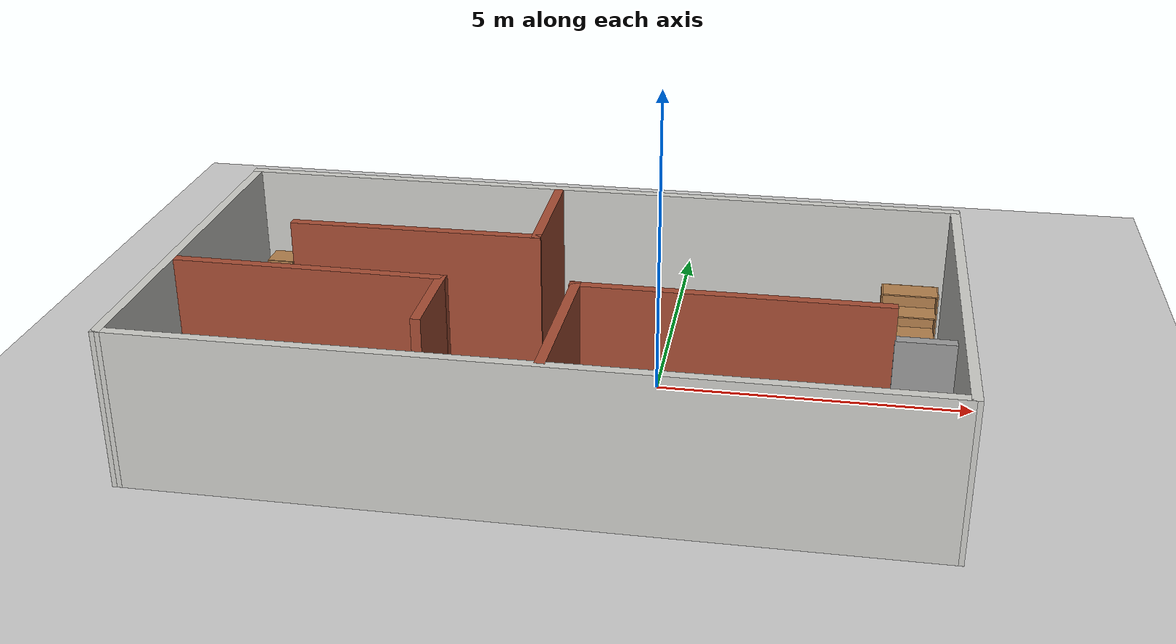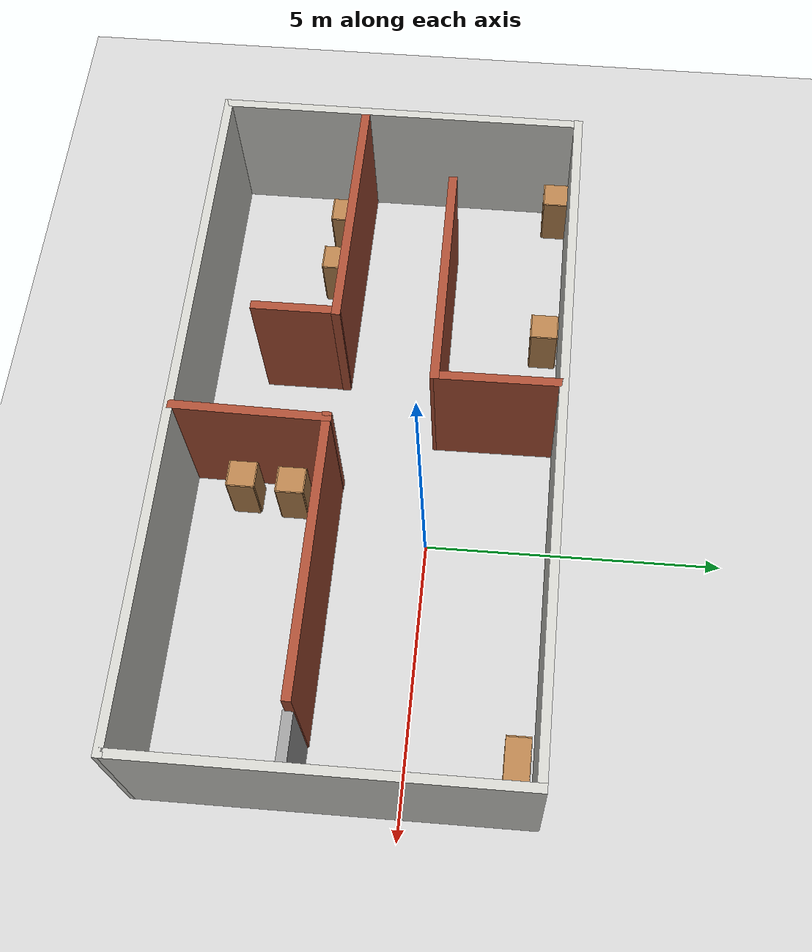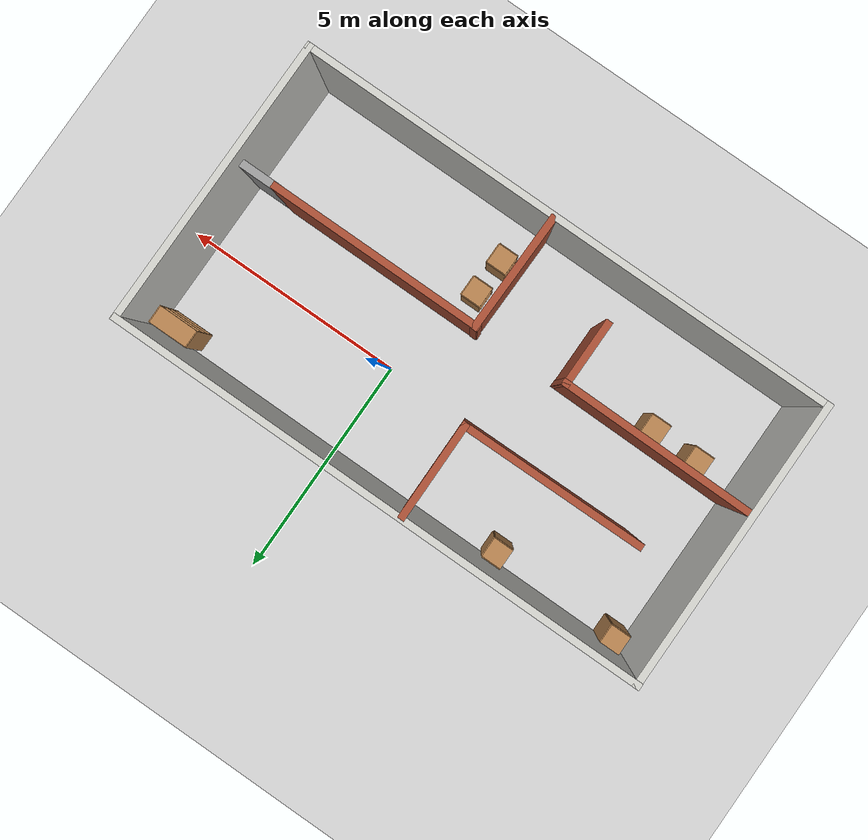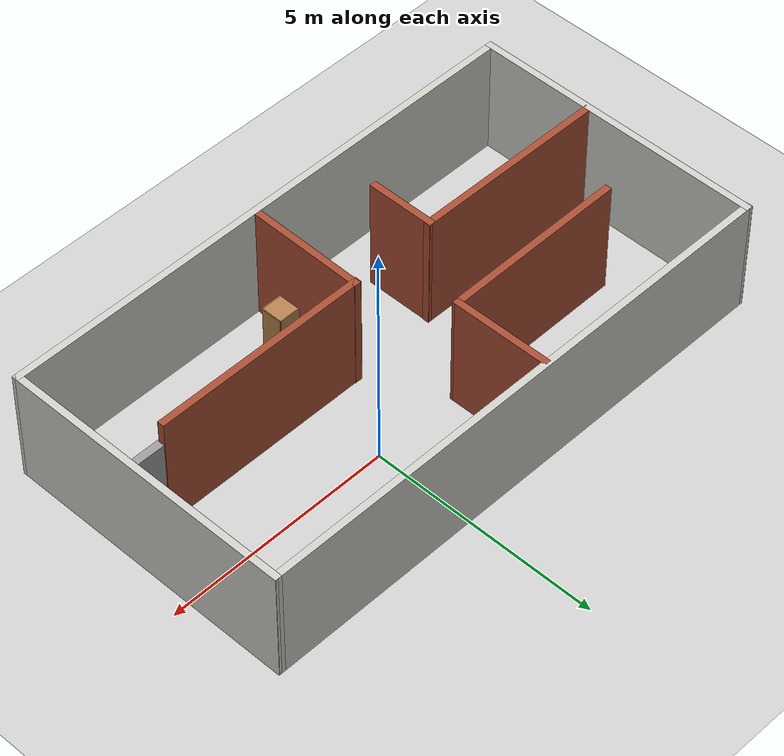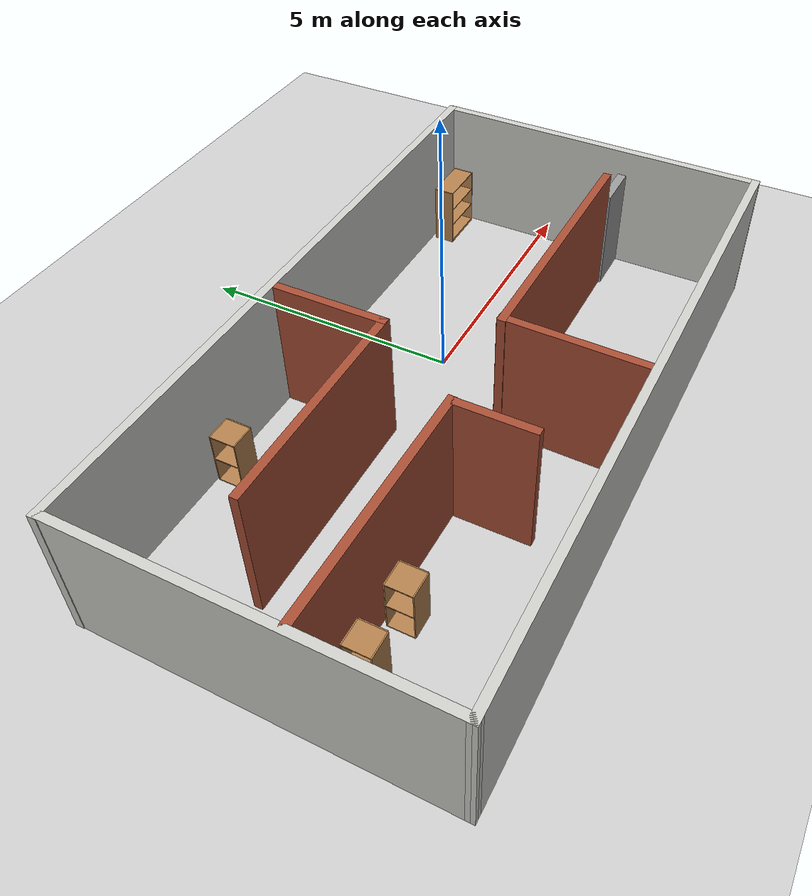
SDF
<sdf version="1.7">
 <world name="default">
  <light name="sun" type="directional">
   <pose>0 0 10 0 -0 0</pose>
   <diffuse>0.8 0.8 0.8 1</diffuse>
   <specular>0.2 0.2 0.2 1</specular>
   <attenuation>
    <range>1000</range>
    <constant>0.9</constant>
    <linear>0.01</linear>
    <quadratic>0.001</quadratic>
   </attenuation>
   <direction>-0.5 0.1 -0.9</direction>
   <spot><inner_angle>0</inner_angle><outer_angle>0</outer_angle><falloff>0</falloff></spot>
  </light>
  <model name="ground_plane">
   <static>1</static>
   <link name="link">
    <collision name="collision">
     <geometry><plane><normal>0 0 1</normal><size>100 100</size></plane></geometry>
     <surface><friction><ode><mu>100</mu><mu2>50</mu2></ode></friction></surface>
    </collision>
    <visual name="visual">
     <cast_shadows>0</cast_shadows>
     <geometry><plane><normal>0 0 1</normal><size>100 100</size></plane></geometry>
     <material>
      <script><uri>file://media/materials/scripts/gazebo.material</uri><name>Gazebo/Grey</name></script>
     </material>
    </visual>
   </link>
  </model>
  <gravity>0 0 -9.8</gravity>
  <magnetic_field>6e-06 2.3e-05 -4.2e-05</magnetic_field>
  <atmosphere type="adiabatic"/>
  <physics type="ode">
   <max_step_size>0.001</max_step_size>
   <real_time_factor>1</real_time_factor>
   <real_time_update_rate>1000</real_time_update_rate>
  </physics>
  <scene><ambient>0.4 0.4 0.4 1</ambient><background>0.7 0.7 0.7 1</background><shadows>1</shadows></scene>
  <audio><device>default</device></audio>
  <spherical_coordinates>
   <surface_model>EARTH_WGS84</surface_model>
   <latitude_deg>0</latitude_deg>
   <longitude_deg>0</longitude_deg>
   <elevation>0</elevation>
   <heading_deg>0</heading_deg>
  </spherical_coordinates>
  <model name="room1">
   <pose>-1.36 -0.847041 0 0 -0 0</pose>
   <link name="Door_0">
    <collision name="Door_0_Collision">
     <geometry><box><size>0.9 0.17 2</size></box></geometry>
     <pose>0 0 1 0 -0 0</pose>
    </collision>
    <visual name="Door_0_Visual">
     <pose>0 0 1 0 -0 0</pose>
     <geometry><box><size>0.9 0.17 2</size></box></geometry>
     <material>
      <script><uri>file://media/materials/scripts/gazebo.material</uri><name>Gazebo/Grey</name></script>
     </material>
    </visual>
    <pose>5.41 -0.79744 0 0 -0 0</pose>
   </link>
   <link name="Wall_0">
    <collision name="Wall_0_Collision">
     <geometry><box><size>6.42001 0.15 2.5</size></box></geometry>
     <pose>0 0 1.25 0 -0 0</pose>
    </collision>
    <visual name="Wall_0_Visual">
     <pose>0 0 1.25 0 -0 0</pose>
     <geometry><box><size>6.42001 0.15 2.5</size></box></geometry>
     <material>
      <script><uri>file://media/materials/scripts/gazebo.material</uri><name>Gazebo/CeilingTiled</name></script>
      <ambient>1 1 1 1</ambient>
     </material>
     <meta><layer>0</layer></meta>
    </visual>
    <pose>-5.925 -0.17244 0 0 -0 -1.57239</pose>
   </link>
   <link name="Wall_1">
    <collision name="Wall_1_Collision">
     <geometry><box><size>12 0.15 2.5</size></box></geometry>
     <pose>0 0 1.25 0 -0 0</pose>
    </collision>
    <visual name="Wall_1_Visual">
     <pose>0 0 1.25 0 -0 0</pose>
     <geometry><box><size>12 0.15 2.5</size></box></geometry>
     <material>
      <script><uri>file://media/materials/scripts/gazebo.material</uri><name>Gazebo/CeilingTiled</name></script>
      <ambient>1 1 1 1</ambient>
     </material>
     <meta><layer>0</layer></meta>
    </visual>
    <pose>-0.005 -3.30744 0 0 -0 0</pose>
   </link>
   <link name="Wall_11">
    <collision name="Wall_11_Collision">
     <geometry><box><size>2.64032 0.15 2.5</size></box></geometry>
     <pose>0 0 1.25 0 -0 0</pose>
    </collision>
    <visual name="Wall_11_Visual">
     <pose>0 0 1.25 0 -0 0</pose>
     <geometry><box><size>2.64032 0.15 2.5</size></box></geometry>
     <material>
      <script><uri>file://media/materials/scripts/gazebo.material</uri><name>Gazebo/Bricks</name></script>
      <ambient>1 1 1 1</ambient>
     </material>
     <meta><layer>0</layer></meta>
    </visual>
    <pose>0.3 -2.00244 0 0 -0 -1.58686</pose>
   </link>
   <link name="Wall_13">
    <collision name="Wall_13_Collision">
     <geometry><box><size>4.75 0.15 2.5</size></box></geometry>
     <pose>0 0 1.25 0 -0 0</pose>
    </collision>
    <visual name="Wall_13_Visual">
     <pose>0 0 1.25 0 -0 0</pose>
     <geometry><box><size>4.75 0.15 2.5</size></box></geometry>
     <material>
      <script><uri>file://media/materials/scripts/gazebo.material</uri><name>Gazebo/Bricks</name></script>
      <ambient>1 1 1 1</ambient>
     </material>
     <meta><layer>0</layer></meta>
    </visual>
    <pose>2.6 -0.76744 0 0 -0 0</pose>
   </link>
   <link name="Wall_2">
    <collision name="Wall_2_Collision">
     <geometry><box><size>6.42001 0.15 2.5</size></box></geometry>
     <pose>0 0 1.25 0 -0 0</pose>
    </collision>
    <visual name="Wall_2_Visual">
     <pose>0 0 1.25 0 -0 0</pose>
     <geometry><box><size>6.42001 0.15 2.5</size></box></geometry>
     <material>
      <script><uri>file://media/materials/scripts/gazebo.material</uri><name>Gazebo/CeilingTiled</name></script>
      <ambient>1 1 1 1</ambient>
     </material>
     <meta><layer>0</layer></meta>
    </visual>
    <pose>5.925 -0.17244 0 0 -0 1.5692</pose>
   </link>
   <link name="Wall_3">
    <collision name="Wall_3_Collision">
     <geometry><box><size>12 0.15 2.5</size></box></geometry>
     <pose>0 0 1.25 0 -0 0</pose>
    </collision>
    <visual name="Wall_3_Visual">
     <pose>0 0 1.25 0 -0 0</pose>
     <geometry><box><size>12 0.15 2.5</size></box></geometry>
     <material>
      <script><uri>file://media/materials/scripts/gazebo.material</uri><name>Gazebo/CeilingTiled</name></script>
      <ambient>1 1 1 1</ambient>
     </material>
     <meta><layer>0</layer></meta>
    </visual>
    <pose>-0.005 2.96256 0 0 -0 3.14159</pose>
   </link>
   <link name="Wall_5">
    <collision name="Wall_5_Collision">
     <geometry><box><size>2.17002 0.15 2.5</size></box></geometry>
     <pose>0 0 1.25 0 -0 0</pose>
    </collision>
    <visual name="Wall_5_Visual">
     <pose>0 0 1.25 0 -0 0</pose>
     <geometry><box><size>2.17002 0.15 2.5</size></box></geometry>
     <material>
      <script><uri>file://media/materials/scripts/gazebo.material</uri><name>Gazebo/Bricks</name></script>
      <ambient>1 1 1 1</ambient>
     </material>
     <meta><layer>0</layer></meta>
    </visual>
    <pose>-0.595 1.89256 0 0 -0 -1.56585</pose>
   </link>
   <link name="Wall_6">
    <collision name="Wall_6_Collision">
     <geometry><box><size>4.07012 0.15 2.5</size></box></geometry>
     <pose>0 0 1.25 0 -0 0</pose>
    </collision>
    <visual name="Wall_6_Visual">
     <pose>0 0 1.25 0 -0 0</pose>
     <geometry><box><size>4.07012 0.15 2.5</size></box></geometry>
     <material>
      <script><uri>file://media/materials/scripts/gazebo.material</uri><name>Gazebo/Bricks</name></script>
      <ambient>1 1 1 1</ambient>
     </material>
     <meta><layer>0</layer></meta>
    </visual>
    <pose>-2.55 0.85756 0 0 -0 -3.13394</pose>
   </link>
   <link name="Wall_8">
    <collision name="Wall_8_Collision">
     <geometry><box><size>4.32011 0.15 2.5</size></box></geometry>
     <pose>0 0 1.25 0 -0 0</pose>
    </collision>
    <visual name="Wall_8_Visual">
     <pose>0 0 1.25 0 -0 0</pose>
     <geometry><box><size>4.32011 0.15 2.5</size></box></geometry>
     <material>
      <script><uri>file://media/materials/scripts/gazebo.material</uri><name>Gazebo/Bricks</name></script>
      <ambient>1 1 1 1</ambient>
     </material>
     <meta><layer>0</layer></meta>
    </visual>
    <pose>-3.765 -0.84244 0 0 -0 -0.007194</pose>
   </link>
   <link name="Wall_9">
    <collision name="Wall_9_Collision">
     <geometry><box><size>1.5 0.15 2.5</size></box></geometry>
     <pose>0 0 1.25 0 -0 0</pose>
    </collision>
    <visual name="Wall_9_Visual">
     <pose>0 0 1.25 0 -0 0</pose>
     <geometry><box><size>1.5 0.15 2.5</size></box></geometry>
     <material>
      <script><uri>file://media/materials/scripts/gazebo.material</uri><name>Gazebo/Bricks</name></script>
      <ambient>1 1 1 1</ambient>
     </material>
     <meta><layer>0</layer></meta>
    </visual>
    <pose>-1.69 -1.53244 0 0 -0 -1.5708</pose>
   </link>
   <static>1</static>
  </model>
  <model name="bookshelf">
   <static>1</static>
   <link name="link">
    <inertial><mass>1</mass></inertial>
    <collision name="back">
     <pose>0 0.005 0.6 0 -0 0</pose>
     <geometry><box><size>0.9 0.01 1.2</size></box></geometry>
    </collision>
    <visual name="visual1">
     <pose>0 0.005 0.6 0 -0 0</pose>
     <geometry><box><size>0.9 0.01 1.2</size></box></geometry>
     <material>
      <script><uri>file://media/materials/scripts/gazebo.material</uri><name>Gazebo/Wood</name></script>
     </material>
    </visual>
    <collision name="left_side">
     <pose>0.45 -0.195 0.6 0 -0 0</pose>
     <geometry><box><size>0.02 0.4 1.2</size></box></geometry>
    </collision>
    <visual name="visual2">
     <pose>0.45 -0.195 0.6 0 -0 0</pose>
     <geometry><box><size>0.02 0.4 1.2</size></box></geometry>
     <material>
      <script><uri>file://media/materials/scripts/gazebo.material</uri><name>Gazebo/Wood</name></script>
     </material>
    </visual>
    <collision name="right_side">
     <pose>-0.45 -0.195 0.6 0 -0 0</pose>
     <geometry><box><size>0.02 0.4 1.2</size></box></geometry>
    </collision>
    <visual name="visual3">
     <pose>-0.45 -0.195 0.6 0 -0 0</pose>
     <geometry><box><size>0.02 0.4 1.2</size></box></geometry>
     <material>
      <script><uri>file://media/materials/scripts/gazebo.material</uri><name>Gazebo/Wood</name></script>
     </material>
    </visual>
    <collision name="bottom">
     <pose>0 -0.195 0.03 0 -0 0</pose>
     <geometry><box><size>0.88 0.4 0.06</size></box></geometry>
    </collision>
    <visual name="visual4">
     <pose>0 -0.195 0.03 0 -0 0</pose>
     <geometry><box><size>0.88 0.4 0.06</size></box></geometry>
     <material>
      <script><uri>file://media/materials/scripts/gazebo.material</uri><name>Gazebo/Wood</name></script>
     </material>
    </visual>
    <collision name="top">
     <pose>0 -0.195 1.19 0 -0 0</pose>
     <geometry><box><size>0.88 0.4 0.02</size></box></geometry>
    </collision>
    <visual name="visual5">
     <pose>0 -0.195 1.19 0 -0 0</pose>
     <geometry><box><size>0.88 0.4 0.02</size></box></geometry>
     <material>
      <script><uri>file://media/materials/scripts/gazebo.material</uri><name>Gazebo/Wood</name></script>
     </material>
    </visual>
    <collision name="low_shelf">
     <pose>0 -0.195 0.43 0 -0 0</pose>
     <geometry><box><size>0.88 0.4 0.02</size></box></geometry>
    </collision>
    <visual name="visual6">
     <pose>0 -0.195 0.43 0 -0 0</pose>
     <geometry><box><size>0.88 0.4 0.02</size></box></geometry>
     <material>
      <script><uri>file://media/materials/scripts/gazebo.material</uri><name>Gazebo/Wood</name></script>
     </material>
    </visual>
    <collision name="high_shelf">
     <pose>0 -0.195 0.8 0 -0 0</pose>
     <geometry><box><size>0.88 0.4 0.02</size></box></geometry>
    </collision>
    <visual name="visual7">
     <pose>0 -0.195 0.8 0 -0 0</pose>
     <geometry><box><size>0.88 0.4 0.02</size></box></geometry>
     <material>
      <script><uri>file://media/materials/scripts/gazebo.material</uri><name>Gazebo/Wood</name></script>
     </material>
    </visual>
   </link>
   <pose>3.95286 1.96369 0 0 -0 0</pose>
  </model>
  <model name="cabinet">
   <static>1</static>
   <link name="cabinet_bottom_plate">
    <inertial>
     <pose>0 0 -1 0 -0 0</pose>
     <inertia><ixx>2.05</ixx><ixy>0</ixy><ixz>0</ixz><iyy>2.05</iyy><iyz>0</iyz><izz>2.05</izz></inertia>
     <mass>25</mass>
    </inertial>
    <collision name="cabinet_bottom_plate_geom">
     <pose>0 0 0.01 0 -0 0</pose>
     <geometry><box><size>0.45 0.45 0.02</size></box></geometry>
    </collision>
    <visual name="cabinet_bottom_plate_geom_visual">
     <pose>0 0 0.01 0 -0 0</pose>
     <geometry><box><size>0.45 0.45 0.02</size></box></geometry>
     <material>
      <script><uri>file://media/materials/scripts/gazebo.material</uri><name>Gazebo/Wood</name></script>
     </material>
    </visual>
    <collision name="cabinet_bottom_plate_geom_cabinet_back_plate">
     <pose>0.235 0 0.51 0 -0 0</pose>
     <geometry><box><size>0.02 0.45 1.02</size></box></geometry>
    </collision>
    <visual name="cabinet_bottom_plate_geom_cabinet_back_plate_visual">
     <pose>0.235 0 0.51 0 -0 0</pose>
     <geometry><box><size>0.02 0.45 1.02</size></box></geometry>
     <material>
      <script><uri>file://media/materials/scripts/gazebo.material</uri><name>Gazebo/Wood</name></script>
     </material>
    </visual>
    <collision name="cabinet_bottom_plate_geom_cabinet_left_plate">
     <pose>0 0.235 0.51 0 -0 0</pose>
     <geometry><box><size>0.45 0.02 1.02</size></box></geometry>
    </collision>
    <visual name="cabinet_bottom_plate_geom_cabinet_left_plate_visual">
     <pose>0 0.235 0.51 0 -0 0</pose>
     <geometry><box><size>0.45 0.02 1.02</size></box></geometry>
     <material>
      <script><uri>file://media/materials/scripts/gazebo.material</uri><name>Gazebo/Wood</name></script>
     </material>
    </visual>
    <collision name="cabinet_bottom_plate_geom_cabinet_middle_plate">
     <pose>0 0 0.51 0 -0 0</pose>
     <geometry><box><size>0.45 0.45 0.02</size></box></geometry>
    </collision>
    <visual name="cabinet_bottom_plate_geom_cabinet_middle_plate_visual">
     <pose>0 0 0.51 0 -0 0</pose>
     <geometry><box><size>0.45 0.45 0.02</size></box></geometry>
     <material>
      <script><uri>file://media/materials/scripts/gazebo.material</uri><name>Gazebo/Wood</name></script>
     </material>
    </visual>
    <collision name="cabinet_bottom_plate_geom_cabinet_right_plate">
     <pose>0 -0.235 0.51 0 -0 0</pose>
     <geometry><box><size>0.45 0.02 1.02</size></box></geometry>
    </collision>
    <visual name="cabinet_bottom_plate_geom_cabinet_right_plate_visual">
     <pose>0 -0.235 0.51 0 -0 0</pose>
     <geometry><box><size>0.45 0.02 1.02</size></box></geometry>
     <material>
      <script><uri>file://media/materials/scripts/gazebo.material</uri><name>Gazebo/Wood</name></script>
     </material>
    </visual>
    <collision name="cabinet_bottom_plate_geom_cabinet_top_plate">
     <pose>0 0 1.01 0 -0 0</pose>
     <geometry><box><size>0.45 0.45 0.02</size></box></geometry>
    </collision>
    <visual name="cabinet_bottom_plate_geom_cabinet_top_plate_visual">
     <pose>0 0 1.01 0 -0 0</pose>
     <geometry><box><size>0.45 0.45 0.02</size></box></geometry>
     <material>
      <script><uri>file://media/materials/scripts/gazebo.material</uri><name>Gazebo/Wood</name></script>
     </material>
    </visual>
   </link>
   <pose>-6.85176 1.84334 0 0 -0 0</pose>
  </model>
  <model name="cabinet_0">
   <static>1</static>
   <link name="cabinet_bottom_plate">
    <inertial>
     <pose>0 0 -1 0 -0 0</pose>
     <inertia><ixx>2.05</ixx><ixy>0</ixy><ixz>0</ixz><iyy>2.05</iyy><iyz>0</iyz><izz>2.05</izz></inertia>
     <mass>25</mass>
    </inertial>
    <collision name="cabinet_bottom_plate_geom">
     <pose>0 0 0.01 0 -0 0</pose>
     <geometry><box><size>0.45 0.45 0.02</size></box></geometry>
    </collision>
    <visual name="cabinet_bottom_plate_geom_visual">
     <pose>0 0 0.01 0 -0 0</pose>
     <geometry><box><size>0.45 0.45 0.02</size></box></geometry>
     <material>
      <script><uri>file://media/materials/scripts/gazebo.material</uri><name>Gazebo/Wood</name></script>
     </material>
    </visual>
    <collision name="cabinet_bottom_plate_geom_cabinet_back_plate">
     <pose>0.235 0 0.51 0 -0 0</pose>
     <geometry><box><size>0.02 0.45 1.02</size></box></geometry>
    </collision>
    <visual name="cabinet_bottom_plate_geom_cabinet_back_plate_visual">
     <pose>0.235 0 0.51 0 -0 0</pose>
     <geometry><box><size>0.02 0.45 1.02</size></box></geometry>
     <material>
      <script><uri>file://media/materials/scripts/gazebo.material</uri><name>Gazebo/Wood</name></script>
     </material>
    </visual>
    <collision name="cabinet_bottom_plate_geom_cabinet_left_plate">
     <pose>0 0.235 0.51 0 -0 0</pose>
     <geometry><box><size>0.45 0.02 1.02</size></box></geometry>
    </collision>
    <visual name="cabinet_bottom_plate_geom_cabinet_left_plate_visual">
     <pose>0 0.235 0.51 0 -0 0</pose>
     <geometry><box><size>0.45 0.02 1.02</size></box></geometry>
     <material>
      <script><uri>file://media/materials/scripts/gazebo.material</uri><name>Gazebo/Wood</name></script>
     </material>
    </visual>
    <collision name="cabinet_bottom_plate_geom_cabinet_middle_plate">
     <pose>0 0 0.51 0 -0 0</pose>
     <geometry><box><size>0.45 0.45 0.02</size></box></geometry>
    </collision>
    <visual name="cabinet_bottom_plate_geom_cabinet_middle_plate_visual">
     <pose>0 0 0.51 0 -0 0</pose>
     <geometry><box><size>0.45 0.45 0.02</size></box></geometry>
     <material>
      <script><uri>file://media/materials/scripts/gazebo.material</uri><name>Gazebo/Wood</name></script>
     </material>
    </visual>
    <collision name="cabinet_bottom_plate_geom_cabinet_right_plate">
     <pose>0 -0.235 0.51 0 -0 0</pose>
     <geometry><box><size>0.45 0.02 1.02</size></box></geometry>
    </collision>
    <visual name="cabinet_bottom_plate_geom_cabinet_right_plate_visual">
     <pose>0 -0.235 0.51 0 -0 0</pose>
     <geometry><box><size>0.45 0.02 1.02</size></box></geometry>
     <material>
      <script><uri>file://media/materials/scripts/gazebo.material</uri><name>Gazebo/Wood</name></script>
     </material>
    </visual>
    <collision name="cabinet_bottom_plate_geom_cabinet_top_plate">
     <pose>0 0 1.01 0 -0 0</pose>
     <geometry><box><size>0.45 0.45 0.02</size></box></geometry>
    </collision>
    <visual name="cabinet_bottom_plate_geom_cabinet_top_plate_visual">
     <pose>0 0 1.01 0 -0 0</pose>
     <geometry><box><size>0.45 0.45 0.02</size></box></geometry>
     <material>
      <script><uri>file://media/materials/scripts/gazebo.material</uri><name>Gazebo/Wood</name></script>
     </material>
    </visual>
   </link>
   <pose>-3.94981 1.76897 0 0 -0 0</pose>
  </model>
  <model name="cabinet_1">
   <static>1</static>
   <link name="cabinet_bottom_plate">
    <inertial>
     <pose>0 0 -1 0 -0 0</pose>
     <inertia><ixx>2.05</ixx><ixy>0</ixy><ixz>0</ixz><iyy>2.05</iyy><iyz>0</iyz><izz>2.05</izz></inertia>
     <mass>25</mass>
    </inertial>
    <collision name="cabinet_bottom_plate_geom">
     <pose>0 0 0.01 0 -0 0</pose>
     <geometry><box><size>0.45 0.45 0.02</size></box></geometry>
    </collision>
    <visual name="cabinet_bottom_plate_geom_visual">
     <pose>0 0 0.01 0 -0 0</pose>
     <geometry><box><size>0.45 0.45 0.02</size></box></geometry>
     <material>
      <script><uri>file://media/materials/scripts/gazebo.material</uri><name>Gazebo/Wood</name></script>
     </material>
    </visual>
    <collision name="cabinet_bottom_plate_geom_cabinet_back_plate">
     <pose>0.235 0 0.51 0 -0 0</pose>
     <geometry><box><size>0.02 0.45 1.02</size></box></geometry>
    </collision>
    <visual name="cabinet_bottom_plate_geom_cabinet_back_plate_visual">
     <pose>0.235 0 0.51 0 -0 0</pose>
     <geometry><box><size>0.02 0.45 1.02</size></box></geometry>
     <material>
      <script><uri>file://media/materials/scripts/gazebo.material</uri><name>Gazebo/Wood</name></script>
     </material>
    </visual>
    <collision name="cabinet_bottom_plate_geom_cabinet_left_plate">
     <pose>0 0.235 0.51 0 -0 0</pose>
     <geometry><box><size>0.45 0.02 1.02</size></box></geometry>
    </collision>
    <visual name="cabinet_bottom_plate_geom_cabinet_left_plate_visual">
     <pose>0 0.235 0.51 0 -0 0</pose>
     <geometry><box><size>0.45 0.02 1.02</size></box></geometry>
     <material>
      <script><uri>file://media/materials/scripts/gazebo.material</uri><name>Gazebo/Wood</name></script>
     </material>
    </visual>
    <collision name="cabinet_bottom_plate_geom_cabinet_middle_plate">
     <pose>0 0 0.51 0 -0 0</pose>
     <geometry><box><size>0.45 0.45 0.02</size></box></geometry>
    </collision>
    <visual name="cabinet_bottom_plate_geom_cabinet_middle_plate_visual">
     <pose>0 0 0.51 0 -0 0</pose>
     <geometry><box><size>0.45 0.45 0.02</size></box></geometry>
     <material>
      <script><uri>file://media/materials/scripts/gazebo.material</uri><name>Gazebo/Wood</name></script>
     </material>
    </visual>
    <collision name="cabinet_bottom_plate_geom_cabinet_right_plate">
     <pose>0 -0.235 0.51 0 -0 0</pose>
     <geometry><box><size>0.45 0.02 1.02</size></box></geometry>
    </collision>
    <visual name="cabinet_bottom_plate_geom_cabinet_right_plate_visual">
     <pose>0 -0.235 0.51 0 -0 0</pose>
     <geometry><box><size>0.45 0.02 1.02</size></box></geometry>
     <material>
      <script><uri>file://media/materials/scripts/gazebo.material</uri><name>Gazebo/Wood</name></script>
     </material>
    </visual>
    <collision name="cabinet_bottom_plate_geom_cabinet_top_plate">
     <pose>0 0 1.01 0 -0 0</pose>
     <geometry><box><size>0.45 0.45 0.02</size></box></geometry>
    </collision>
    <visual name="cabinet_bottom_plate_geom_cabinet_top_plate_visual">
     <pose>0 0 1.01 0 -0 0</pose>
     <geometry><box><size>0.45 0.45 0.02</size></box></geometry>
     <material>
      <script><uri>file://media/materials/scripts/gazebo.material</uri><name>Gazebo/Wood</name></script>
     </material>
    </visual>
   </link>
   <pose>-6.21403 -2.0325 0 0 -0 0</pose>
  </model>
  <model name="cabinet_1_clone">
   <static>1</static>
   <link name="cabinet_bottom_plate">
    <inertial>
     <pose>0 0 -1 0 -0 0</pose>
     <inertia><ixx>2.05</ixx><ixy>0</ixy><ixz>0</ixz><iyy>2.05</iyy><iyz>0</iyz><izz>2.05</izz></inertia>
     <mass>25</mass>
    </inertial>
    <collision name="cabinet_bottom_plate_geom">
     <pose>0 0 0.01 0 -0 0</pose>
     <geometry><box><size>0.45 0.45 0.02</size></box></geometry>
    </collision>
    <visual name="cabinet_bottom_plate_geom_visual">
     <pose>0 0 0.01 0 -0 0</pose>
     <geometry><box><size>0.45 0.45 0.02</size></box></geometry>
     <material>
      <script><uri>file://media/materials/scripts/gazebo.material</uri><name>Gazebo/Wood</name></script>
     </material>
    </visual>
    <collision name="cabinet_bottom_plate_geom_cabinet_back_plate">
     <pose>0.235 0 0.51 0 -0 0</pose>
     <geometry><box><size>0.02 0.45 1.02</size></box></geometry>
    </collision>
    <visual name="cabinet_bottom_plate_geom_cabinet_back_plate_visual">
     <pose>0.235 0 0.51 0 -0 0</pose>
     <geometry><box><size>0.02 0.45 1.02</size></box></geometry>
     <material>
      <script><uri>file://media/materials/scripts/gazebo.material</uri><name>Gazebo/Wood</name></script>
     </material>
    </visual>
    <collision name="cabinet_bottom_plate_geom_cabinet_left_plate">
     <pose>0 0.235 0.51 0 -0 0</pose>
     <geometry><box><size>0.45 0.02 1.02</size></box></geometry>
    </collision>
    <visual name="cabinet_bottom_plate_geom_cabinet_left_plate_visual">
     <pose>0 0.235 0.51 0 -0 0</pose>
     <geometry><box><size>0.45 0.02 1.02</size></box></geometry>
     <material>
      <script><uri>file://media/materials/scripts/gazebo.material</uri><name>Gazebo/Wood</name></script>
     </material>
    </visual>
    <collision name="cabinet_bottom_plate_geom_cabinet_middle_plate">
     <pose>0 0 0.51 0 -0 0</pose>
     <geometry><box><size>0.45 0.45 0.02</size></box></geometry>
    </collision>
    <visual name="cabinet_bottom_plate_geom_cabinet_middle_plate_visual">
     <pose>0 0 0.51 0 -0 0</pose>
     <geometry><box><size>0.45 0.45 0.02</size></box></geometry>
     <material>
      <script><uri>file://media/materials/scripts/gazebo.material</uri><name>Gazebo/Wood</name></script>
     </material>
    </visual>
    <collision name="cabinet_bottom_plate_geom_cabinet_right_plate">
     <pose>0 -0.235 0.51 0 -0 0</pose>
     <geometry><box><size>0.45 0.02 1.02</size></box></geometry>
    </collision>
    <visual name="cabinet_bottom_plate_geom_cabinet_right_plate_visual">
     <pose>0 -0.235 0.51 0 -0 0</pose>
     <geometry><box><size>0.45 0.02 1.02</size></box></geometry>
     <material>
      <script><uri>file://media/materials/scripts/gazebo.material</uri><name>Gazebo/Wood</name></script>
     </material>
    </visual>
    <collision name="cabinet_bottom_plate_geom_cabinet_top_plate">
     <pose>0 0 1.01 0 -0 0</pose>
     <geometry><box><size>0.45 0.45 0.02</size></box></geometry>
    </collision>
    <visual name="cabinet_bottom_plate_geom_cabinet_top_plate_visual">
     <pose>0 0 1.01 0 -0 0</pose>
     <geometry><box><size>0.45 0.45 0.02</size></box></geometry>
     <material>
      <script><uri>file://media/materials/scripts/gazebo.material</uri><name>Gazebo/Wood</name></script>
     </material>
    </visual>
   </link>
   <pose>-5.14202 -2.07196 0 0 -0 0</pose>
  </model>
  <model name="cabinet_1_clone_0">
   <static>1</static>
   <link name="cabinet_bottom_plate">
    <inertial>
     <pose>0 0 -1 0 -0 0</pose>
     <inertia><ixx>2.05</ixx><ixy>0</ixy><ixz>0</ixz><iyy>2.05</iyy><iyz>0</iyz><izz>2.05</izz></inertia>
     <mass>25</mass>
    </inertial>
    <collision name="cabinet_bottom_plate_geom">
     <pose>0 0 0.01 0 -0 0</pose>
     <geometry><box><size>0.45 0.45 0.02</size></box></geometry>
    </collision>
    <visual name="cabinet_bottom_plate_geom_visual">
     <pose>0 0 0.01 0 -0 0</pose>
     <geometry><box><size>0.45 0.45 0.02</size></box></geometry>
     <material>
      <script><uri>file://media/materials/scripts/gazebo.material</uri><name>Gazebo/Wood</name></script>
     </material>
    </visual>
    <collision name="cabinet_bottom_plate_geom_cabinet_back_plate">
     <pose>0.235 0 0.51 0 -0 0</pose>
     <geometry><box><size>0.02 0.45 1.02</size></box></geometry>
    </collision>
    <visual name="cabinet_bottom_plate_geom_cabinet_back_plate_visual">
     <pose>0.235 0 0.51 0 -0 0</pose>
     <geometry><box><size>0.02 0.45 1.02</size></box></geometry>
     <material>
      <script><uri>file://media/materials/scripts/gazebo.material</uri><name>Gazebo/Wood</name></script>
     </material>
    </visual>
    <collision name="cabinet_bottom_plate_geom_cabinet_left_plate">
     <pose>0 0.235 0.51 0 -0 0</pose>
     <geometry><box><size>0.45 0.02 1.02</size></box></geometry>
    </collision>
    <visual name="cabinet_bottom_plate_geom_cabinet_left_plate_visual">
     <pose>0 0.235 0.51 0 -0 0</pose>
     <geometry><box><size>0.45 0.02 1.02</size></box></geometry>
     <material>
      <script><uri>file://media/materials/scripts/gazebo.material</uri><name>Gazebo/Wood</name></script>
     </material>
    </visual>
    <collision name="cabinet_bottom_plate_geom_cabinet_middle_plate">
     <pose>0 0 0.51 0 -0 0</pose>
     <geometry><box><size>0.45 0.45 0.02</size></box></geometry>
    </collision>
    <visual name="cabinet_bottom_plate_geom_cabinet_middle_plate_visual">
     <pose>0 0 0.51 0 -0 0</pose>
     <geometry><box><size>0.45 0.45 0.02</size></box></geometry>
     <material>
      <script><uri>file://media/materials/scripts/gazebo.material</uri><name>Gazebo/Wood</name></script>
     </material>
    </visual>
    <collision name="cabinet_bottom_plate_geom_cabinet_right_plate">
     <pose>0 -0.235 0.51 0 -0 0</pose>
     <geometry><box><size>0.45 0.02 1.02</size></box></geometry>
    </collision>
    <visual name="cabinet_bottom_plate_geom_cabinet_right_plate_visual">
     <pose>0 -0.235 0.51 0 -0 0</pose>
     <geometry><box><size>0.45 0.02 1.02</size></box></geometry>
     <material>
      <script><uri>file://media/materials/scripts/gazebo.material</uri><name>Gazebo/Wood</name></script>
     </material>
    </visual>
    <collision name="cabinet_bottom_plate_geom_cabinet_top_plate">
     <pose>0 0 1.01 0 -0 0</pose>
     <geometry><box><size>0.45 0.45 0.02</size></box></geometry>
    </collision>
    <visual name="cabinet_bottom_plate_geom_cabinet_top_plate_visual">
     <pose>0 0 1.01 0 -0 0</pose>
     <geometry><box><size>0.45 0.45 0.02</size></box></geometry>
     <material>
      <script><uri>file://media/materials/scripts/gazebo.material</uri><name>Gazebo/Wood</name></script>
     </material>
    </visual>
   </link>
   <pose>-0.608343 -2.29418 0 0 -0 0</pose>
  </model>
  <model name="cabinet_1_clone_1">
   <static>1</static>
   <link name="cabinet_bottom_plate">
    <inertial>
     <pose>0 0 -1 0 -0 0</pose>
     <inertia><ixx>2.05</ixx><ixy>0</ixy><ixz>0</ixz><iyy>2.05</iyy><iyz>0</iyz><izz>2.05</izz></inertia>
     <mass>25</mass>
    </inertial>
    <collision name="cabinet_bottom_plate_geom">
     <pose>0 0 0.01 0 -0 0</pose>
     <geometry><box><size>0.45 0.45 0.02</size></box></geometry>
    </collision>
    <visual name="cabinet_bottom_plate_geom_visual">
     <pose>0 0 0.01 0 -0 0</pose>
     <geometry><box><size>0.45 0.45 0.02</size></box></geometry>
     <material>
      <script><uri>file://media/materials/scripts/gazebo.material</uri><name>Gazebo/Wood</name></script>
     </material>
    </visual>
    <collision name="cabinet_bottom_plate_geom_cabinet_back_plate">
     <pose>0.235 0 0.51 0 -0 0</pose>
     <geometry><box><size>0.02 0.45 1.02</size></box></geometry>
    </collision>
    <visual name="cabinet_bottom_plate_geom_cabinet_back_plate_visual">
     <pose>0.235 0 0.51 0 -0 0</pose>
     <geometry><box><size>0.02 0.45 1.02</size></box></geometry>
     <material>
      <script><uri>file://media/materials/scripts/gazebo.material</uri><name>Gazebo/Wood</name></script>
     </material>
    </visual>
    <collision name="cabinet_bottom_plate_geom_cabinet_left_plate">
     <pose>0 0.235 0.51 0 -0 0</pose>
     <geometry><box><size>0.45 0.02 1.02</size></box></geometry>
    </collision>
    <visual name="cabinet_bottom_plate_geom_cabinet_left_plate_visual">
     <pose>0 0.235 0.51 0 -0 0</pose>
     <geometry><box><size>0.45 0.02 1.02</size></box></geometry>
     <material>
      <script><uri>file://media/materials/scripts/gazebo.material</uri><name>Gazebo/Wood</name></script>
     </material>
    </visual>
    <collision name="cabinet_bottom_plate_geom_cabinet_middle_plate">
     <pose>0 0 0.51 0 -0 0</pose>
     <geometry><box><size>0.45 0.45 0.02</size></box></geometry>
    </collision>
    <visual name="cabinet_bottom_plate_geom_cabinet_middle_plate_visual">
     <pose>0 0 0.51 0 -0 0</pose>
     <geometry><box><size>0.45 0.45 0.02</size></box></geometry>
     <material>
      <script><uri>file://media/materials/scripts/gazebo.material</uri><name>Gazebo/Wood</name></script>
     </material>
    </visual>
    <collision name="cabinet_bottom_plate_geom_cabinet_right_plate">
     <pose>0 -0.235 0.51 0 -0 0</pose>
     <geometry><box><size>0.45 0.02 1.02</size></box></geometry>
    </collision>
    <visual name="cabinet_bottom_plate_geom_cabinet_right_plate_visual">
     <pose>0 -0.235 0.51 0 -0 0</pose>
     <geometry><box><size>0.45 0.02 1.02</size></box></geometry>
     <material>
      <script><uri>file://media/materials/scripts/gazebo.material</uri><name>Gazebo/Wood</name></script>
     </material>
    </visual>
    <collision name="cabinet_bottom_plate_geom_cabinet_top_plate">
     <pose>0 0 1.01 0 -0 0</pose>
     <geometry><box><size>0.45 0.45 0.02</size></box></geometry>
    </collision>
    <visual name="cabinet_bottom_plate_geom_cabinet_top_plate_visual">
     <pose>0 0 1.01 0 -0 0</pose>
     <geometry><box><size>0.45 0.45 0.02</size></box></geometry>
     <material>
      <script><uri>file://media/materials/scripts/gazebo.material</uri><name>Gazebo/Wood</name></script>
     </material>
    </visual>
   </link>
   <pose>-0.657129 -3.12608 0 0 -0 0</pose>
  </model>
 </world>
</sdf>
